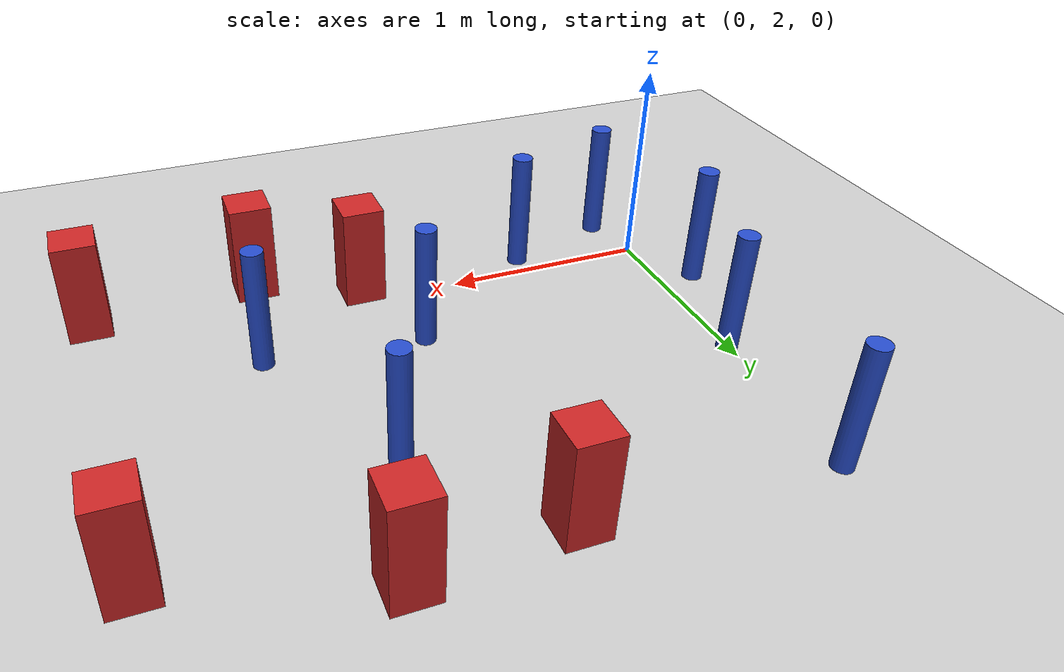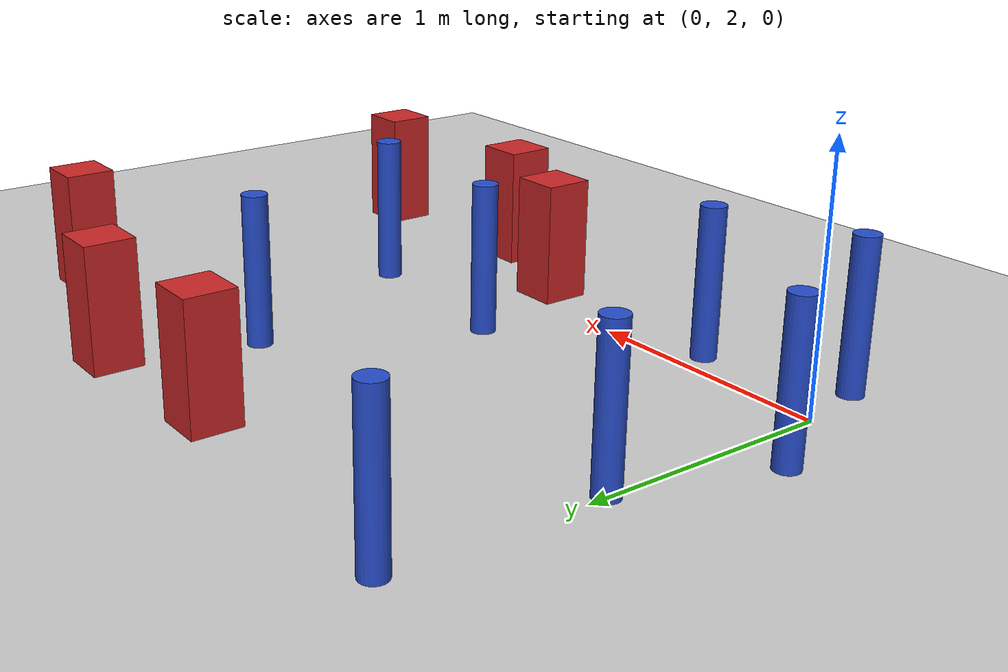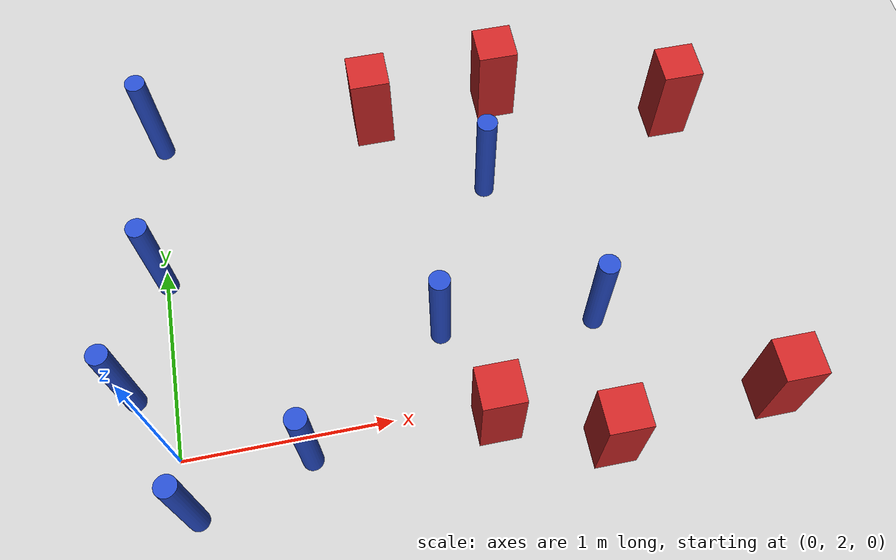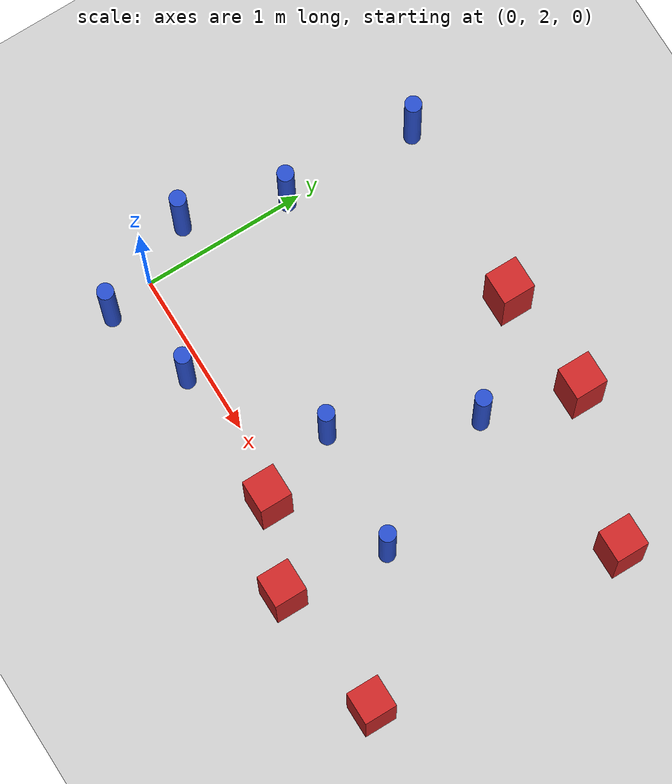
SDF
<sdf version="1.6">
 <world name="default">
  <model name="ground_plane">
   <static>1</static>
   <link name="link">
    <collision name="collision">
     <geometry><plane><normal>0 0 1</normal><size>100 100</size></plane></geometry>
     <surface><friction><ode><mu>100</mu><mu2>50</mu2></ode></friction></surface>
    </collision>
    <visual name="visual">
     <cast_shadows>0</cast_shadows>
     <geometry><plane><normal>0 0 1</normal><size>100 100</size></plane></geometry>
     <material>
      <ambient>1.0 1.0 1.0 1.0</ambient>
      <diffuse>0.8 0.8 0.8 1.0</diffuse>
      <specular>0.01 0.01 0.01 1.000000</specular>
     </material>
    </visual>
   </link>
  </model>
  <model name="square_post_obstacle6">
   <static>true</static>
   <pose>2.74779495735 3.42681355464 1.91545236811e-07 -7.35059704564e-06 1.12565212e-07 2.39332434364e-05</pose>
   <link name="link">
    <pose>0 0 0.25 0 -0 0</pose>
    <inertial>
     <mass>100</mass>
     <inertia>
      <ixx>0.166667</ixx>
      <ixy>0</ixy>
      <ixz>0</ixz>
      <iyy>0.166667</iyy>
      <iyz>0</iyz>
      <izz>0.166667</izz>
     </inertia>
    </inertial>
    <collision name="collision"><geometry><box><size>.2 .2 .5</size></box></geometry></collision>
    <visual name="visual">
     <geometry><box><size>.2 .2 .5</size></box></geometry>
     <material>
      <script><name>Gazebo/Red</name><uri>file://media/materials/scripts/gazebo.material</uri></script>
     </material>
    </visual>
   </link>
  </model>
  <model name="pole_obstacle9">
   <static>true</static>
   <pose>1.30406484558 2.3932725286 7.38925637345e-09 -8.47170692799e-08 1.24976765053e-08 -1.74513093017e-07</pose>
   <link name="link">
    <pose>0 0 0.3 0 -0 0</pose>
    <inertial>
     <mass>1</mass>
     <inertia><ixx>0.145833</ixx><ixy>0</ixy><ixz>0</ixz><iyy>0.145833</iyy><iyz>0</iyz><izz>0.125</izz></inertia>
    </inertial>
    <collision name="collision">
     <geometry><cylinder><radius>0.05</radius><length>.6</length></cylinder></geometry>
    </collision>
    <visual name="visual">
     <geometry><cylinder><radius>0.05</radius><length>.6</length></cylinder></geometry>
     <material>
      <script><name>Gazebo/Blue</name><uri>file://media/materials/scripts/gazebo.material</uri></script>
     </material>
    </visual>
   </link>
  </model>
  <model name="pole_obstacle40">
   <static>true</static>
   <pose>2.06021648572 2.32384527895 7.38925637345e-09 -8.47170692798e-08 1.24976764939e-08 -1.74513093025e-07</pose>
   <link name="link">
    <pose>0 0 0.3 0 -0 0</pose>
    <inertial>
     <mass>1</mass>
     <inertia><ixx>0.145833</ixx><ixy>0</ixy><ixz>0</ixz><iyy>0.145833</iyy><iyz>0</iyz><izz>0.125</izz></inertia>
    </inertial>
    <collision name="collision">
     <geometry><cylinder><radius>0.05</radius><length>.6</length></cylinder></geometry>
    </collision>
    <visual name="visual">
     <geometry><cylinder><radius>0.05</radius><length>.6</length></cylinder></geometry>
     <material>
      <script><name>Gazebo/Blue</name><uri>file://media/materials/scripts/gazebo.material</uri></script>
     </material>
    </visual>
   </link>
  </model>
  <model name="square_post_obstacle73">
   <static>true</static>
   <pose>2.7805694358 1.77309273545 1.91545236811e-07 -7.35059704564e-06 1.12565212e-07 2.39332434364e-05</pose>
   <link name="link">
    <pose>0 0 0.25 0 -0 0</pose>
    <inertial>
     <mass>100</mass>
     <inertia>
      <ixx>0.166667</ixx>
      <ixy>0</ixy>
      <ixz>0</ixz>
      <iyy>0.166667</iyy>
      <iyz>0</iyz>
      <izz>0.166667</izz>
     </inertia>
    </inertial>
    <collision name="collision"><geometry><box><size>.2 .2 .5</size></box></geometry></collision>
    <visual name="visual">
     <geometry><box><size>.2 .2 .5</size></box></geometry>
     <material>
      <script><name>Gazebo/Red</name><uri>file://media/materials/scripts/gazebo.material</uri></script>
     </material>
    </visual>
   </link>
  </model>
  <model name="square_post_obstacle92">
   <static>true</static>
   <pose>1.85218060831 3.73177177197 1.91545236811e-07 -7.35059704564e-06 1.12565212e-07 2.39332434364e-05</pose>
   <link name="link">
    <pose>0 0 0.25 0 -0 0</pose>
    <inertial>
     <mass>100</mass>
     <inertia>
      <ixx>0.166667</ixx>
      <ixy>0</ixy>
      <ixz>0</ixz>
      <iyy>0.166667</iyy>
      <iyz>0</iyz>
      <izz>0.166667</izz>
     </inertia>
    </inertial>
    <collision name="collision"><geometry><box><size>.2 .2 .5</size></box></geometry></collision>
    <visual name="visual">
     <geometry><box><size>.2 .2 .5</size></box></geometry>
     <material>
      <script><name>Gazebo/Red</name><uri>file://media/materials/scripts/gazebo.material</uri></script>
     </material>
    </visual>
   </link>
  </model>
  <model name="pole_obstacle108">
   <static>true</static>
   <pose>0.60476029904 1.88756414676 7.38925637345e-09 -8.47170692799e-08 1.24976765033e-08 -1.7451309302e-07</pose>
   <link name="link">
    <pose>0 0 0.3 0 -0 0</pose>
    <inertial>
     <mass>1</mass>
     <inertia><ixx>0.145833</ixx><ixy>0</ixy><ixz>0</ixz><iyy>0.145833</iyy><iyz>0</iyz><izz>0.125</izz></inertia>
    </inertial>
    <collision name="collision">
     <geometry><cylinder><radius>0.05</radius><length>.6</length></cylinder></geometry>
    </collision>
    <visual name="visual">
     <geometry><cylinder><radius>0.05</radius><length>.6</length></cylinder></geometry>
     <material>
      <script><name>Gazebo/Blue</name><uri>file://media/materials/scripts/gazebo.material</uri></script>
     </material>
    </visual>
   </link>
  </model>
  <model name="pole_obstacle118">
   <static>true</static>
   <pose>0.0646321608904 1.71178864233 7.38925637345e-09 -8.471706928e-08 1.24976765024e-08 -1.7451309302e-07</pose>
   <link name="link">
    <pose>0 0 0.3 0 -0 0</pose>
    <inertial>
     <mass>1</mass>
     <inertia><ixx>0.145833</ixx><ixy>0</ixy><ixz>0</ixz><iyy>0.145833</iyy><iyz>0</iyz><izz>0.125</izz></inertia>
    </inertial>
    <collision name="collision">
     <geometry><cylinder><radius>0.05</radius><length>.6</length></cylinder></geometry>
    </collision>
    <visual name="visual">
     <geometry><cylinder><radius>0.05</radius><length>.6</length></cylinder></geometry>
     <material>
      <script><name>Gazebo/Blue</name><uri>file://media/materials/scripts/gazebo.material</uri></script>
     </material>
    </visual>
   </link>
  </model>
  <model name="pole_obstacle126">
   <static>true</static>
   <pose>-0.185885994054 2.33326420951 7.38925637345e-09 -8.471706928e-08 1.2497676511e-08 -1.74513093013e-07</pose>
   <link name="link">
    <pose>0 0 0.3 0 -0 0</pose>
    <inertial>
     <mass>1</mass>
     <inertia><ixx>0.145833</ixx><ixy>0</ixy><ixz>0</ixz><iyy>0.145833</iyy><iyz>0</iyz><izz>0.125</izz></inertia>
    </inertial>
    <collision name="collision">
     <geometry><cylinder><radius>0.05</radius><length>.6</length></cylinder></geometry>
    </collision>
    <visual name="visual">
     <geometry><cylinder><radius>0.05</radius><length>.6</length></cylinder></geometry>
     <material>
      <script><name>Gazebo/Blue</name><uri>file://media/materials/scripts/gazebo.material</uri></script>
     </material>
    </visual>
   </link>
  </model>
  <model name="pole_obstacle143">
   <static>true</static>
   <pose>0.00714552020065 2.92301817739 7.38925637345e-09 -8.47170692792e-08 1.24976764387e-08 -1.74513093042e-07</pose>
   <link name="link">
    <pose>0 0 0.3 0 -0 0</pose>
    <inertial>
     <mass>1</mass>
     <inertia><ixx>0.145833</ixx><ixy>0</ixy><ixz>0</ixz><iyy>0.145833</iyy><iyz>0</iyz><izz>0.125</izz></inertia>
    </inertial>
    <collision name="collision">
     <geometry><cylinder><radius>0.05</radius><length>.6</length></cylinder></geometry>
    </collision>
    <visual name="visual">
     <geometry><cylinder><radius>0.05</radius><length>.6</length></cylinder></geometry>
     <material>
      <script><name>Gazebo/Blue</name><uri>file://media/materials/scripts/gazebo.material</uri></script>
     </material>
    </visual>
   </link>
  </model>
  <model name="pole_obstacle150">
   <static>true</static>
   <pose>1.69088032658 3.17839503263 7.38925637345e-09 -8.47170692799e-08 1.24976765053e-08 -1.74513093017e-07</pose>
   <link name="link">
    <pose>0 0 0.3 0 -0 0</pose>
    <inertial>
     <mass>1</mass>
     <inertia><ixx>0.145833</ixx><ixy>0</ixy><ixz>0</ixz><iyy>0.145833</iyy><iyz>0</iyz><izz>0.125</izz></inertia>
    </inertial>
    <collision name="collision">
     <geometry><cylinder><radius>0.05</radius><length>.6</length></cylinder></geometry>
    </collision>
    <visual name="visual">
     <geometry><cylinder><radius>0.05</radius><length>.6</length></cylinder></geometry>
     <material>
      <script><name>Gazebo/Blue</name><uri>file://media/materials/scripts/gazebo.material</uri></script>
     </material>
    </visual>
   </link>
  </model>
  <model name="square_post_obstacle163">
   <static>true</static>
   <pose>1.1763178697 3.68082974101 1.91545236811e-07 -7.35059704564e-06 1.12565212e-07 2.39332434364e-05</pose>
   <link name="link">
    <pose>0 0 0.25 0 -0 0</pose>
    <inertial>
     <mass>100</mass>
     <inertia>
      <ixx>0.166667</ixx>
      <ixy>0</ixy>
      <ixz>0</ixz>
      <iyy>0.166667</iyy>
      <iyz>0</iyz>
      <izz>0.166667</izz>
     </inertia>
    </inertial>
    <collision name="collision"><geometry><box><size>.2 .2 .5</size></box></geometry></collision>
    <visual name="visual">
     <geometry><box><size>.2 .2 .5</size></box></geometry>
     <material>
      <script><name>Gazebo/Red</name><uri>file://media/materials/scripts/gazebo.material</uri></script>
     </material>
    </visual>
   </link>
  </model>
  <model name="square_post_obstacle182">
   <static>true</static>
   <pose>1.97186080157 1.69371912852 1.91545236811e-07 -7.35059704564e-06 1.12565212e-07 2.39332434364e-05</pose>
   <link name="link">
    <pose>0 0 0.25 0 -0 0</pose>
    <inertial>
     <mass>100</mass>
     <inertia>
      <ixx>0.166667</ixx>
      <ixy>0</ixy>
      <ixz>0</ixz>
      <iyy>0.166667</iyy>
      <iyz>0</iyz>
      <izz>0.166667</izz>
     </inertia>
    </inertial>
    <collision name="collision"><geometry><box><size>.2 .2 .5</size></box></geometry></collision>
    <visual name="visual">
     <geometry><box><size>.2 .2 .5</size></box></geometry>
     <material>
      <script><name>Gazebo/Red</name><uri>file://media/materials/scripts/gazebo.material</uri></script>
     </material>
    </visual>
   </link>
  </model>
  <model name="pole_obstacle209">
   <static>true</static>
   <pose>0.0398417052091 3.74868275164 7.38925637345e-09 -8.47170692793e-08 1.24976764386e-08 -1.74513093042e-07</pose>
   <link name="link">
    <pose>0 0 0.3 0 -0 0</pose>
    <inertial>
     <mass>1</mass>
     <inertia><ixx>0.145833</ixx><ixy>0</ixy><ixz>0</ixz><iyy>0.145833</iyy><iyz>0</iyz><izz>0.125</izz></inertia>
    </inertial>
    <collision name="collision">
     <geometry><cylinder><radius>0.05</radius><length>.6</length></cylinder></geometry>
    </collision>
    <visual name="visual">
     <geometry><cylinder><radius>0.05</radius><length>.6</length></cylinder></geometry>
     <material>
      <script><name>Gazebo/Blue</name><uri>file://media/materials/scripts/gazebo.material</uri></script>
     </material>
    </visual>
   </link>
  </model>
  <model name="square_post_obstacle220">
   <static>true</static>
   <pose>1.47478295557 1.90258222347 1.91545236811e-07 -7.35059704564e-06 1.12565212e-07 2.39332434364e-05</pose>
   <link name="link">
    <pose>0 0 0.25 0 -0 0</pose>
    <inertial>
     <mass>100</mass>
     <inertia>
      <ixx>0.166667</ixx>
      <ixy>0</ixy>
      <ixz>0</ixz>
      <iyy>0.166667</iyy>
      <iyz>0</iyz>
      <izz>0.166667</izz>
     </inertia>
    </inertial>
    <collision name="collision"><geometry><box><size>.2 .2 .5</size></box></geometry></collision>
    <visual name="visual">
     <geometry><box><size>.2 .2 .5</size></box></geometry>
     <material>
      <script><name>Gazebo/Red</name><uri>file://media/materials/scripts/gazebo.material</uri></script>
     </material>
    </visual>
   </link>
  </model>
 </world>
</sdf>
